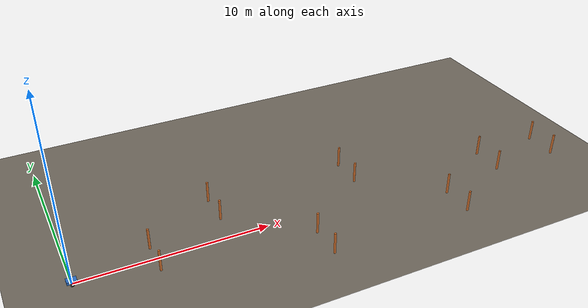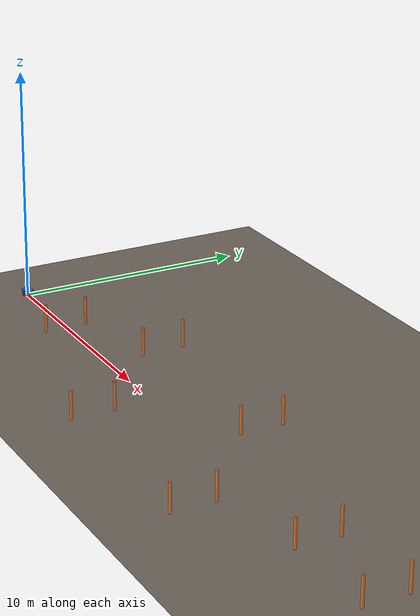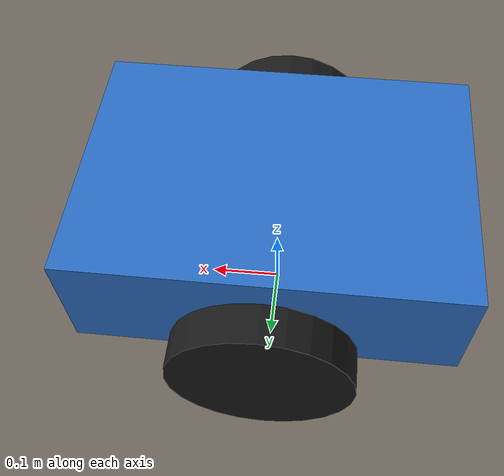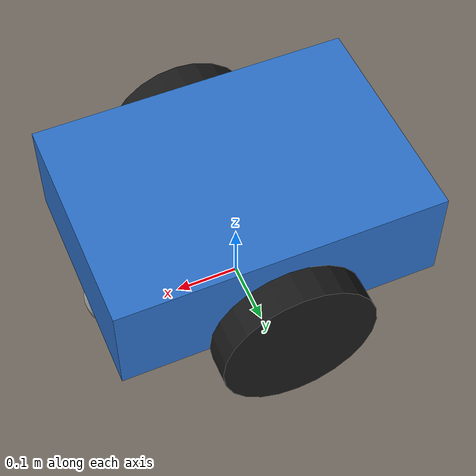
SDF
<?xml version="1.0"?>
<sdf version="1.9">
  <world name="teleop_course">
    <physics name="p" type="ignored"><max_step_size>0.004</max_step_size>
      <real_time_factor>1.0</real_time_factor></physics>
    <plugin filename="gz-sim-physics-system" name="gz::sim::systems::Physics"/>
    <plugin filename="gz-sim-user-commands-system"
            name="gz::sim::systems::UserCommands"/>
    <plugin filename="gz-sim-scene-broadcaster-system"
            name="gz::sim::systems::SceneBroadcaster"/>
    <light type="directional" name="sun"><cast_shadows>true</cast_shadows>
      <pose>0 0 10 0 0 0</pose><diffuse>0.9 0.85 0.8 1</diffuse>
      <direction>-0.4 0.2 -0.9</direction></light>
    <model name="ground"><static>true</static><link name="l">
      <collision name="c"><geometry><plane><normal>0 0 1</normal>
        <size>100 100</size></plane></geometry></collision>
      <visual name="v"><geometry><plane><normal>0 0 1</normal>
        <size>100 100</size></plane></geometry>
        <material><ambient>0.45 0.42 0.38 1</ambient>
        <diffuse>0.45 0.42 0.38 1</diffuse></material></visual></link></model>

    <model name="gate_0_0"><static>true</static>
      <pose>4.00 0.90 0.6 0 0 0</pose>
      <link name="l"><visual name="v"><geometry><cylinder>
        <radius>0.06</radius><length>1.2</length></cylinder></geometry>
        <material><ambient>0.85 0.45 0.18 1</ambient>
        <diffuse>0.85 0.45 0.18 1</diffuse></material></visual>
      <collision name="c"><geometry><cylinder><radius>0.06</radius>
        <length>1.2</length></cylinder></geometry></collision></link>
    </model>
    <model name="gate_0_1"><static>true</static>
      <pose>4.00 -0.90 0.6 0 0 0</pose>
      <link name="l"><visual name="v"><geometry><cylinder>
        <radius>0.06</radius><length>1.2</length></cylinder></geometry>
        <material><ambient>0.85 0.45 0.18 1</ambient>
        <diffuse>0.85 0.45 0.18 1</diffuse></material></visual>
      <collision name="c"><geometry><cylinder><radius>0.06</radius>
        <length>1.2</length></cylinder></geometry></collision></link>
    </model>
    <model name="gate_1_0"><static>true</static>
      <pose>8.00 3.40 0.6 0 0 0</pose>
      <link name="l"><visual name="v"><geometry><cylinder>
        <radius>0.06</radius><length>1.2</length></cylinder></geometry>
        <material><ambient>0.85 0.45 0.18 1</ambient>
        <diffuse>0.85 0.45 0.18 1</diffuse></material></visual>
      <collision name="c"><geometry><cylinder><radius>0.06</radius>
        <length>1.2</length></cylinder></geometry></collision></link>
    </model>
    <model name="gate_1_1"><static>true</static>
      <pose>8.00 1.60 0.6 0 0 0</pose>
      <link name="l"><visual name="v"><geometry><cylinder>
        <radius>0.06</radius><length>1.2</length></cylinder></geometry>
        <material><ambient>0.85 0.45 0.18 1</ambient>
        <diffuse>0.85 0.45 0.18 1</diffuse></material></visual>
      <collision name="c"><geometry><cylinder><radius>0.06</radius>
        <length>1.2</length></cylinder></geometry></collision></link>
    </model>
    <model name="gate_2_0"><static>true</static>
      <pose>12.00 -1.60 0.6 0 0 0</pose>
      <link name="l"><visual name="v"><geometry><cylinder>
        <radius>0.06</radius><length>1.2</length></cylinder></geometry>
        <material><ambient>0.85 0.45 0.18 1</ambient>
        <diffuse>0.85 0.45 0.18 1</diffuse></material></visual>
      <collision name="c"><geometry><cylinder><radius>0.06</radius>
        <length>1.2</length></cylinder></geometry></collision></link>
    </model>
    <model name="gate_2_1"><static>true</static>
      <pose>12.00 -3.40 0.6 0 0 0</pose>
      <link name="l"><visual name="v"><geometry><cylinder>
        <radius>0.06</radius><length>1.2</length></cylinder></geometry>
        <material><ambient>0.85 0.45 0.18 1</ambient>
        <diffuse>0.85 0.45 0.18 1</diffuse></material></visual>
      <collision name="c"><geometry><cylinder><radius>0.06</radius>
        <length>1.2</length></cylinder></geometry></collision></link>
    </model>
    <model name="gate_3_0"><static>true</static>
      <pose>16.00 3.40 0.6 0 0 0</pose>
      <link name="l"><visual name="v"><geometry><cylinder>
        <radius>0.06</radius><length>1.2</length></cylinder></geometry>
        <material><ambient>0.85 0.45 0.18 1</ambient>
        <diffuse>0.85 0.45 0.18 1</diffuse></material></visual>
      <collision name="c"><geometry><cylinder><radius>0.06</radius>
        <length>1.2</length></cylinder></geometry></collision></link>
    </model>
    <model name="gate_3_1"><static>true</static>
      <pose>16.00 1.60 0.6 0 0 0</pose>
      <link name="l"><visual name="v"><geometry><cylinder>
        <radius>0.06</radius><length>1.2</length></cylinder></geometry>
        <material><ambient>0.85 0.45 0.18 1</ambient>
        <diffuse>0.85 0.45 0.18 1</diffuse></material></visual>
      <collision name="c"><geometry><cylinder><radius>0.06</radius>
        <length>1.2</length></cylinder></geometry></collision></link>
    </model>
    <model name="gate_4_0"><static>true</static>
      <pose>20.00 -1.60 0.6 0 0 0</pose>
      <link name="l"><visual name="v"><geometry><cylinder>
        <radius>0.06</radius><length>1.2</length></cylinder></geometry>
        <material><ambient>0.85 0.45 0.18 1</ambient>
        <diffuse>0.85 0.45 0.18 1</diffuse></material></visual>
      <collision name="c"><geometry><cylinder><radius>0.06</radius>
        <length>1.2</length></cylinder></geometry></collision></link>
    </model>
    <model name="gate_4_1"><static>true</static>
      <pose>20.00 -3.40 0.6 0 0 0</pose>
      <link name="l"><visual name="v"><geometry><cylinder>
        <radius>0.06</radius><length>1.2</length></cylinder></geometry>
        <material><ambient>0.85 0.45 0.18 1</ambient>
        <diffuse>0.85 0.45 0.18 1</diffuse></material></visual>
      <collision name="c"><geometry><cylinder><radius>0.06</radius>
        <length>1.2</length></cylinder></geometry></collision></link>
    </model>
    <model name="gate_5_0"><static>true</static>
      <pose>24.00 0.90 0.6 0 0 0</pose>
      <link name="l"><visual name="v"><geometry><cylinder>
        <radius>0.06</radius><length>1.2</length></cylinder></geometry>
        <material><ambient>0.85 0.45 0.18 1</ambient>
        <diffuse>0.85 0.45 0.18 1</diffuse></material></visual>
      <collision name="c"><geometry><cylinder><radius>0.06</radius>
        <length>1.2</length></cylinder></geometry></collision></link>
    </model>
    <model name="gate_5_1"><static>true</static>
      <pose>24.00 -0.90 0.6 0 0 0</pose>
      <link name="l"><visual name="v"><geometry><cylinder>
        <radius>0.06</radius><length>1.2</length></cylinder></geometry>
        <material><ambient>0.85 0.45 0.18 1</ambient>
        <diffuse>0.85 0.45 0.18 1</diffuse></material></visual>
      <collision name="c"><geometry><cylinder><radius>0.06</radius>
        <length>1.2</length></cylinder></geometry></collision></link>
    </model>
    <model name="gate_6_0"><static>true</static>
      <pose>28.00 0.90 0.6 0 0 0</pose>
      <link name="l"><visual name="v"><geometry><cylinder>
        <radius>0.06</radius><length>1.2</length></cylinder></geometry>
        <material><ambient>0.85 0.45 0.18 1</ambient>
        <diffuse>0.85 0.45 0.18 1</diffuse></material></visual>
      <collision name="c"><geometry><cylinder><radius>0.06</radius>
        <length>1.2</length></cylinder></geometry></collision></link>
    </model>
    <model name="gate_6_1"><static>true</static>
      <pose>28.00 -0.90 0.6 0 0 0</pose>
      <link name="l"><visual name="v"><geometry><cylinder>
        <radius>0.06</radius><length>1.2</length></cylinder></geometry>
        <material><ambient>0.85 0.45 0.18 1</ambient>
        <diffuse>0.85 0.45 0.18 1</diffuse></material></visual>
      <collision name="c"><geometry><cylinder><radius>0.06</radius>
        <length>1.2</length></cylinder></geometry></collision></link>
    </model>
    <model name="rover">
      <pose>0 0 0.0 0 0 0</pose>
      <link name="chassis"><pose>0 0 0.18 0 0 0</pose>
        <inertial><mass>4.0</mass><inertia><ixx>0.05</ixx><iyy>0.09</iyy>
          <izz>0.12</izz><ixy>0</ixy><ixz>0</ixz><iyz>0</iyz></inertia></inertial>
        <visual name="v"><geometry><box><size>0.5 0.35 0.16</size></box>
          </geometry><material><ambient>0.18 0.45 0.8 1</ambient>
          <diffuse>0.18 0.45 0.8 1</diffuse></material></visual>
        <collision name="c"><geometry><box><size>0.5 0.35 0.16</size></box>
          </geometry></collision></link>

      <link name="left_wheel"><pose>0 0.21 0.12 -1.5708 0 0</pose>
        <inertial><mass>0.6</mass><inertia><ixx>0.002</ixx><iyy>0.002</iyy>
          <izz>0.004</izz><ixy>0</ixy><ixz>0</ixz><iyz>0</iyz></inertia></inertial>
        <visual name="v"><geometry><cylinder><radius>0.12</radius>
          <length>0.05</length></cylinder></geometry>
          <material><ambient>0.1 0.1 0.1 1</ambient></material></visual>
        <collision name="c"><geometry><cylinder><radius>0.12</radius>
          <length>0.05</length></cylinder></geometry>
          <surface><friction><ode><mu>1.1</mu><mu2>1.1</mu2></ode>
          </friction></surface></collision></link>
      <joint name="left_wheel_joint" type="revolute">
        <parent>chassis</parent><child>left_wheel</child>
        <axis><xyz>0 0 1</xyz></axis></joint>

      <link name="right_wheel"><pose>0 -0.21 0.12 -1.5708 0 0</pose>
        <inertial><mass>0.6</mass><inertia><ixx>0.002</ixx><iyy>0.002</iyy>
          <izz>0.004</izz><ixy>0</ixy><ixz>0</ixz><iyz>0</iyz></inertia></inertial>
        <visual name="v"><geometry><cylinder><radius>0.12</radius>
          <length>0.05</length></cylinder></geometry>
          <material><ambient>0.1 0.1 0.1 1</ambient></material></visual>
        <collision name="c"><geometry><cylinder><radius>0.12</radius>
          <length>0.05</length></cylinder></geometry>
          <surface><friction><ode><mu>1.1</mu><mu2>1.1</mu2></ode>
          </friction></surface></collision></link>
      <joint name="right_wheel_joint" type="revolute">
        <parent>chassis</parent><child>right_wheel</child>
        <axis><xyz>0 0 1</xyz></axis></joint>
      <link name="caster"><pose>0.2 0 0.05 0 0 0</pose>
        <inertial><mass>0.2</mass><inertia><ixx>0.0004</ixx><iyy>0.0004</iyy>
          <izz>0.0004</izz><ixy>0</ixy><ixz>0</ixz><iyz>0</iyz></inertia></inertial>
        <visual name="v"><geometry><sphere><radius>0.05</radius></sphere>
          </geometry></visual>
        <collision name="c"><geometry><sphere><radius>0.05</radius></sphere>
          </geometry><surface><friction><ode><mu>0.0</mu><mu2>0.0</mu2>
          </ode></friction></surface></collision></link>
      <joint name="caster_joint" type="ball">
        <parent>chassis</parent><child>caster</child></joint>
      <plugin filename="gz-sim-diff-drive-system"
              name="gz::sim::systems::DiffDrive">
        <left_joint>left_wheel_joint</left_joint>
        <right_joint>right_wheel_joint</right_joint>
        <wheel_separation>0.42</wheel_separation>
        <wheel_radius>0.12</wheel_radius>
        <odom_publish_frequency>30</odom_publish_frequency>
        <topic>/model/rover/cmd_vel</topic>
        <odom_topic>/model/rover/odometry</odom_topic>
      </plugin>
    </model>
  </world>
</sdf>
